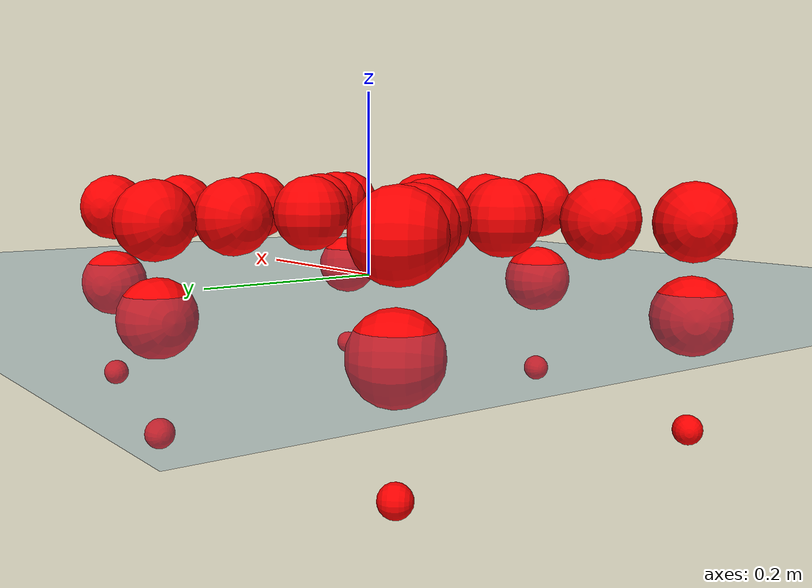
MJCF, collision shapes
<mujoco model="Golem">
  <compiler angle="radian" assetdir="assets" balanceinertia="true" inertiafromgeom="false"/>

  <option timestep="0.005" density="1.2" viscosity="2e-05"/>

  <size nkey="1"/>

  <visual>
    <quality shadowsize="8192"/>
    <map shadowclip="0.5"/>
  </visual>

  <default>
    <default class="/">
      <joint armature="0.01" damping="0.01" frictionloss="0.01"/>
      <geom contype="0" conaffinity="0" group="1" solref="-1000 -80"/>
      <site size="0.01 0.005 0.005" group="5"/>
      <general forcelimited="true" biastype="affine" gainprm="25" biasprm="0 -25 -0.5"/>
      <default class="visual">
        <geom type="mesh" group="2"/>
      </default>
      <default class="collision">
        <geom group="3"/>
      </default>
      <default class="foot">
        <geom size="0.01 0 0" condim="6" group="4" priority="1" solimp="0.015 1 0.01"/>
      </default>
      <default class="reward_collision_sphere">
        <geom group="5" rgba="1 0 0 1"/>
      </default>
    </default>
  </default>

  <asset>
    <texture type="skybox" colorspace="auto" name="//unnamed_texture_0" builtin="gradient" rgb1="0.95 0.95 0.95" rgb2="0.95 0.95 0.95" width="100" height="600"/>
    <texture type="2d" colorspace="auto" name="texplane" builtin="checker" rgb1="0.345 0.575 0.748" rgb2="0.345 0.575 0.748" markrgb="1 1 1" width="512" height="512"/>
    <material name="MatPlane" class="/" texture="texplane" texuniform="true" texrepeat="2 2" specular="0.9"/>
    <mesh name="body" class="/" file="body.stl" scale="0.001 0.001 0.001"/>
    <mesh name="coxa" class="/" file="coxa.stl" scale="0.001 0.001 0.001"/>
    <mesh name="femur" class="/" file="femur.stl" scale="0.001 0.001 0.001"/>
    <mesh name="tibia" class="/" file="tibia.stl" scale="0.001 0.001 0.001"/>
    <mesh name="tarsus" class="/" file="tarsus.stl" scale="0.001 0.001 0.001"/>
  </asset>

  <worldbody>
    <geom name="floor" class="/" size="100 100 0.125" type="plane" group="0" material="MatPlane"/>
    <light name="toplight_shadow" class="/" pos="0 0 5" dir="0.0990148 0.0990148 -0.990148" type="directional" ambient="0.04 0.04 0.04" diffuse="0.55 0.55 0.55" specular="0.12 0.12 0.12"/>
    <light name="toplight_fill" class="/" pos="0 0 5" dir="0.0990148 0.0990148 -0.990148" type="directional" castshadow="false" ambient="0.04 0.04 0.04" diffuse="0.3 0.3 0.3" specular="0.08 0.08 0.08"/>
    <body name="trunk" pos="-9.00668e-05 0.000313183 -9.32207e-05" quat="1 0.000382636 0.000289578 2.47929e-05">
      <inertial pos="0.000412547 0.000125426 -0.00500748" quat="0.999999 0.00101858 -0.000147657 0.000250622" mass="3.55195" diaginertia="0.0127291 0.00358329 0.0167456"/>
      <joint name="//unnamed_joint_0" type="free"/>
      <geom name="//unnamed_geom_1" class="/" pos="0 0 0.0709812" quat="1 0 0 0" type="mesh" rgba="0.9 0.9 0.9 1" mesh="body"/>
      <site name="imu" class="/" pos="0.143014 0.000379288 0.112194" size="0.00992093"/>
      <camera name="track" class="/" pos="0 -1.63283 0" quat="0.707107 0.707107 0 0" mode="trackcom"/>
      <camera name="ego_camera" class="/" pos="0.136602 0 0.110908" quat="-0.5 -0.5 0.5 0.5"/>
      <body name="coxa_RR" pos="-0.186257 -0.0692938 0.0704681" quat="0.382457 -0.000472672 3.80735e-05 -0.923973">
        <inertial pos="-1.10281e-05 0.000253536 -0.000299722" quat="0.999999 -0.000840678 0.000679712 -0.000577752" mass="0.193471" diaginertia="0.0127105 0.00361669 0.0161301"/>
        <joint name="coxa_joint_RR" class="/" pos="0 0 0" axis="0.00216277 -0.0025577 -0.999994" range="-3.13749 3.15828" armature="0.00980324" damping="0.0111048" frictionloss="0.00965281"/>
        <geom name="//unnamed_geom_2" class="/" type="mesh" rgba="0.2 0.2 0.2 1" mesh="coxa"/>
        <geom name="//unnamed_geom_3" class="reward_collision_sphere" size="0.0396837" pos="-0.0315235 0 0"/>
        <body name="femur_RR" pos="0.0633573 0.00288366 -0.00109506" quat="0.500035 -0.499921 0.500013 0.500031">
          <inertial pos="-0.0022128 -0.000190024 -0.00247779" quat="0.999933 0.00427688 0.00802722 0.00717389" mass="0.19256" diaginertia="0.0126769 0.00357262 0.0164394"/>
          <joint name="femur_joint_RR" class="/" pos="0 0 0" axis="-0.00552359 0.000519438 -0.999985" stiffness="0.00401744" range="-3.12316 3.13359" armature="0.00968802" damping="0" frictionloss="0.00992219"/>
          <geom name="//unnamed_geom_4" class="/" type="mesh" rgba="0.9 0.9 0.9 1" mesh="femur"/>
          <geom name="//unnamed_geom_5" class="reward_collision_sphere" size="0.0396837"/>
          <body name="tibia_RR" pos="0.00152652 -0.0881636 -0.00162409" quat="0.000251524 1 9.82513e-05 0.000301479">
            <inertial pos="-0.000241458 3.29807e-06 -0.00149165" quat="0.999998 0.000162435 0.0010802 -0.00135413" mass="0.198896" diaginertia="0.013241 0.00376927 0.0173439"/>
            <joint name="tibia_joint_RR" class="/" pos="0 0 0" axis="0.00338057 0.00606406 0.999976" range="-3.13406 3.1409" armature="0.0103339" damping="0.00147325" frictionloss="0.00948468"/>
            <geom name="//unnamed_geom_6" class="/" type="mesh" rgba="0.2 0.2 0.2 1" mesh="tibia"/>
            <geom name="//unnamed_geom_7" class="reward_collision_sphere" size="0.0396837"/>
            <body name="tarsus_RR" pos="0.0916134 -0.000631648 -0.000561602" quat="1 1.80459e-05 6.5827e-05 -0.000101311">
              <inertial pos="0.0652073 0.000601018 -0.000300753" quat="0.509834 0.496748 0.498071 0.495214" mass="0.201257" diaginertia="0.0126541 0.00362074 0.0171139"/>
              <joint name="tarsus_joint_RR" class="/" pos="0 0 0" axis="-0.0064695 -0.00211643 0.999977" range="-3.14506 3.13802" armature="0.0104079" damping="0.0412964" frictionloss="0.00952339"/>
              <geom name="//unnamed_geom_8" class="/" type="mesh" rgba="0.9 0.9 0.9 1" mesh="tarsus"/>
              <geom name="foot_1" class="foot" size="0.00971671" pos="0.117688 0 0" quat="0 -0.707107 0 0.707107"/>
              <geom name="//unnamed_geom_10" class="reward_collision_sphere" size="0.0396837"/>
              <geom name="//unnamed_geom_11" class="reward_collision_sphere" size="0.0148814" pos="0.112959 0 0"/>
              <site name="foot_1" class="foot" pos="0.117688 0 0" quat="0 -0.707107 0 0.707107" size="0.00992093"/>
            </body>
          </body>
        </body>
      </body>
      <body name="coxa_RM" pos="-7.81658e-05 -0.107537 0.0719717" quat="0.707498 -0.000764067 -0.000626621 -0.706715">
        <inertial pos="-0.000970193 -0.000245031 -0.00166202" quat="0.999994 -0.00051105 -0.00353095 2.60778e-05" mass="0.195765" diaginertia="0.0124975 0.00361777 0.0168857"/>
        <joint name="coxa_joint_RM" class="/" pos="0 0 0" axis="0.00175367 -0.000375754 -0.999998" range="-3.13464 3.1281" armature="0.0100453" damping="0.00983098" frictionloss="0.0103971"/>
        <geom name="//unnamed_geom_12" class="/" type="mesh" rgba="0.2 0.2 0.2 1" mesh="coxa"/>
        <geom name="//unnamed_geom_13" class="reward_collision_sphere" size="0.0396837" pos="-0.0315235 0 0"/>
        <body name="femur_RM" pos="0.0627977 -0.000318241 -0.00139114" quat="0.500002 -0.500008 0.500082 0.499909">
          <inertial pos="0.00200226 -0.00033972 -6.94302e-05" quat="0.999938 -0.00818311 0.00705729 0.0025097" mass="0.196613" diaginertia="0.0127026 0.00357705 0.0167496"/>
          <joint name="femur_joint_RM" class="/" pos="0 0 0" axis="0.00369566 0.00425808 -0.999984" range="-3.14237 3.13559" armature="0.0094109" damping="0.00647496" frictionloss="0.00965073"/>
          <geom name="//unnamed_geom_14" class="/" type="mesh" rgba="0.9 0.9 0.9 1" mesh="femur"/>
          <geom name="//unnamed_geom_15" class="reward_collision_sphere" size="0.0396837"/>
          <body name="tibia_RM" pos="0.000185876 -0.0880514 -0.000811591" quat="-5.61137e-05 1 -3.37939e-05 -0.000130101">
            <inertial pos="-0.00214982 -0.00115626 0.000288278" quat="1 0.000877228 -3.48116e-05 -1.70492e-05" mass="0.192809" diaginertia="0.0128684 0.00357466 0.0161956"/>
            <joint name="tibia_joint_RM" class="/" pos="0 0 0" axis="0.000377247 -0.00209222 0.999998" range="-3.13703 3.15912" armature="0.00998927" damping="0.0129805" frictionloss="0.0104338"/>
            <geom name="//unnamed_geom_16" class="/" type="mesh" rgba="0.2 0.2 0.2 1" mesh="tibia"/>
            <geom name="//unnamed_geom_17" class="reward_collision_sphere" size="0.0396837"/>
            <body name="tarsus_RM" pos="0.0917205 -0.00130006 0.00035344" quat="1 -0.000108946 -6.18162e-05 9.41374e-05">
              <inertial pos="0.0632201 -4.6762e-06 -0.000220105" quat="0.498673 0.500221 0.500568 0.500535" mass="0.194252" diaginertia="0.0123966 0.00358882 0.0167282"/>
              <joint name="tarsus_joint_RM" class="/" pos="0 0 0" axis="0.000469515 -0.00456189 0.999989" range="-3.12974 3.13839" armature="0.0098077" damping="0.00635474" frictionloss="0.010155"/>
              <geom name="//unnamed_geom_18" class="/" type="mesh" rgba="0.9 0.9 0.9 1" mesh="tarsus"/>
              <geom name="foot_2" class="foot" size="0.00928961" pos="0.117688 0 0" quat="0 -0.707107 0 0.707107"/>
              <geom name="//unnamed_geom_20" class="reward_collision_sphere" size="0.0396837"/>
              <geom name="//unnamed_geom_21" class="reward_collision_sphere" size="0.0148814" pos="0.112959 0 0"/>
              <site name="foot_2" class="foot" pos="0.117688 0 0" quat="0 -0.707107 0 0.707107" size="0.00992093"/>
            </body>
          </body>
        </body>
      </body>
      <body name="coxa_RF" pos="0.187409 -0.066333 0.0699328" quat="0.923816 0.000217981 0.000131622 -0.382837">
        <inertial pos="-0.0022555 -0.000263827 0.00075201" quat="0.999977 -0.0025804 0.00377573 -0.00499907" mass="0.198829" diaginertia="0.0126086 0.00349193 0.0165231"/>
        <joint name="coxa_joint_RF" class="/" pos="0 0 0" axis="0.00251877 0.00128128 -0.999996" range="-3.11946 3.14095" armature="0.0102467" damping="0.00959367" frictionloss="0.0104133"/>
        <geom name="//unnamed_geom_22" class="/" type="mesh" rgba="0.2 0.2 0.2 1" mesh="coxa"/>
        <geom name="//unnamed_geom_23" class="reward_collision_sphere" size="0.0396837" pos="-0.0315235 0 0"/>
        <body name="femur_RF" pos="0.0626257 -0.000833412 0.000594862" quat="0.499866 -0.499684 0.500521 0.499928">
          <inertial pos="-0.000479369 0.00203213 -0.000471009" quat="0.999997 -0.00149509 0.00135648 -0.00169264" mass="0.195311" diaginertia="0.0128463 0.00357839 0.0167214"/>
          <joint name="femur_joint_RF" class="/" pos="0 0 0" axis="6.86046e-05 0.000102921 -1" range="-3.13771 3.13377" armature="0.0100206" damping="0.00793951" frictionloss="0.0102479"/>
          <geom name="//unnamed_geom_24" class="/" type="mesh" rgba="0.9 0.9 0.9 1" mesh="femur"/>
          <geom name="//unnamed_geom_25" class="reward_collision_sphere" size="0.0396837"/>
          <body name="tibia_RF" pos="0.001488 -0.0868391 0.000614686" quat="8.14239e-05 1 -0.00041771 -0.000120447">
            <inertial pos="-0.00150651 -0.000987466 0.00183627" quat="0.999998 -0.00208177 0.000110763 -0.000395778" mass="0.196469" diaginertia="0.0128204 0.00364707 0.0167093"/>
            <joint name="tibia_joint_RF" class="/" pos="0 0 0" axis="-0.000145089 -0.000994888 0.999999" range="-3.13392 3.12467" armature="0.00976819" damping="0.000209523" frictionloss="0.0100709"/>
            <geom name="//unnamed_geom_26" class="/" type="mesh" rgba="0.2 0.2 0.2 1" mesh="tibia"/>
            <geom name="//unnamed_geom_27" class="reward_collision_sphere" size="0.0396837"/>
            <body name="tarsus_RF" pos="0.0930173 0.00168117 -0.00126447" quat="1 -0.000159329 -5.47001e-05 6.55655e-05">
              <inertial pos="0.0611382 0.00020207 -0.000340146" quat="0.49878 0.499425 0.501524 0.500266" mass="0.19225" diaginertia="0.012625 0.00372234 0.0164932"/>
              <joint name="tarsus_joint_RF" class="/" pos="0 0 0" axis="-0.00377124 0.00787995 0.999962" range="-3.12754 3.14104" armature="0.0103728" damping="0" frictionloss="0.0111163"/>
              <geom name="//unnamed_geom_28" class="/" type="mesh" rgba="0.9 0.9 0.9 1" mesh="tarsus"/>
              <geom name="foot_3" class="foot" size="0.010668" pos="0.117688 0 0" quat="0 -0.707107 0 0.707107"/>
              <geom name="//unnamed_geom_30" class="reward_collision_sphere" size="0.0396837"/>
              <geom name="//unnamed_geom_31" class="reward_collision_sphere" size="0.0148814" pos="0.112959 0 0"/>
              <site name="foot_3" class="foot" pos="0.117688 0 0" quat="0 -0.707107 0 0.707107" size="0.00992093"/>
            </body>
          </body>
        </body>
      </body>
      <body name="coxa_LR" pos="-0.187028 0.0698232 0.071637" quat="0.383277 0.000275473 -0.000334126 0.923633">
        <inertial pos="-7.50732e-05 -0.000867842 -0.00183886" quat="0.99999 0.00403445 0.000540723 -0.00180322" mass="0.186265" diaginertia="0.0124081 0.00350958 0.0162116"/>
        <joint name="coxa_joint_LR" class="/" pos="0 0 0" axis="0.000230005 -0.000170829 -1" range="-3.12184 3.18576" armature="0.0103567" damping="0.00987233" frictionloss="0.00876121"/>
        <geom name="//unnamed_geom_32" class="/" type="mesh" rgba="0.2 0.2 0.2 1" mesh="coxa"/>
        <geom name="//unnamed_geom_33" class="reward_collision_sphere" size="0.0396837" pos="-0.0315235 0 0"/>
        <body name="femur_LR" pos="0.0635614 -0.00222096 -0.001655" quat="0.499959 -0.500055 0.499926 0.50006">
          <inertial pos="-0.00022737 -0.000851363 -0.00054872" quat="0.999998 0.00160385 0.000744758 -0.00123017" mass="0.196551" diaginertia="0.0130531 0.00376038 0.0170001"/>
          <joint name="femur_joint_LR" class="/" pos="0 0 0" axis="0.00271739 -0.00505092 0.999984" range="-3.13058 3.12172" armature="0.0100326" damping="0.0106612" frictionloss="0.010362"/>
          <geom name="//unnamed_geom_34" class="/" type="mesh" rgba="0.9 0.9 0.9 1" mesh="femur"/>
          <geom name="//unnamed_geom_35" class="reward_collision_sphere" size="0.0396837"/>
          <body name="tibia_LR" pos="-0.000923688 -0.0893416 -0.000921441" quat="-0.000140872 1 -0.000438885 -7.3772e-05">
            <inertial pos="-0.000190461 0.00232018 -8.79137e-05" quat="0.999986 0.000898389 0.00395601 0.0033221" mass="0.192728" diaginertia="0.0131128 0.00365793 0.0161863"/>
            <joint name="tibia_joint_LR" class="/" pos="0 0 0" axis="0.00278674 0.00162108 -0.999995" range="-3.13423 3.13539" armature="0.00943259" damping="0.00142516" frictionloss="0.00969166"/>
            <geom name="//unnamed_geom_36" class="/" type="mesh" rgba="0.2 0.2 0.2 1" mesh="tibia"/>
            <geom name="//unnamed_geom_37" class="reward_collision_sphere" size="0.0396837"/>
            <body name="tarsus_LR" pos="0.0942896 0.000989851 0.00160101" quat="1 7.16417e-05 0.000401846 -0.000320233">
              <inertial pos="0.0646091 0.000580555 0.00114562" quat="0.496476 0.50047 0.502504 0.500531" mass="0.187983" diaginertia="0.0123732 0.00350688 0.0162554"/>
              <joint name="tarsus_joint_LR" class="/" pos="0 0 0" axis="-0.00127186 0.00258859 -0.999996" range="-3.14013 3.14357" armature="0.00865238" damping="0.0281221" frictionloss="0.0104293"/>
              <geom name="//unnamed_geom_38" class="/" type="mesh" rgba="0.9 0.9 0.9 1" mesh="tarsus"/>
              <geom name="foot_4" class="foot" size="0.00958854" pos="0.117688 0 0" quat="0.707107 0 -0.707107 0"/>
              <geom name="//unnamed_geom_40" class="reward_collision_sphere" size="0.0396837"/>
              <geom name="//unnamed_geom_41" class="reward_collision_sphere" size="0.0148814" pos="0.112959 0 0"/>
              <site name="foot_4" class="foot" pos="0.117688 0 0" quat="0.707107 0 -0.707107 0" size="0.00992093"/>
            </body>
          </body>
        </body>
      </body>
      <body name="coxa_LM" pos="-0.000968728 0.107127 0.0714335" quat="0.707731 -0.000604175 -1.59997e-05 0.706482">
        <inertial pos="0.00179611 -0.00180173 0.0013282" quat="0.99998 0.00477941 -0.0037015 0.00198083" mass="0.196235" diaginertia="0.0125353 0.00361135 0.0167024"/>
        <joint name="coxa_joint_LM" class="/" pos="0 0 0" axis="0.000845631 0.00314543 -0.999995" range="-3.1315 3.13543" armature="0.0110517" damping="0" frictionloss="0.00944167"/>
        <geom name="//unnamed_geom_42" class="/" type="mesh" rgba="0.2 0.2 0.2 1" mesh="coxa"/>
        <geom name="//unnamed_geom_43" class="reward_collision_sphere" size="0.0396837" pos="-0.0315235 0 0"/>
        <body name="femur_LM" pos="0.0604386 0.00154677 -0.000568647" quat="0.500005 -0.499886 0.499981 0.500128">
          <inertial pos="-0.00132349 8.00182e-05 -0.00183233" quat="0.999999 -0.00138641 -0.000881364 -0.000116818" mass="0.200502" diaginertia="0.0129338 0.00366773 0.0168851"/>
          <joint name="femur_joint_LM" class="/" pos="0 0 0" axis="0.00471755 -0.00390093 0.999981" range="-3.14094 3.12358" armature="0.00996011" damping="0.00608685" frictionloss="0.00994858"/>
          <geom name="//unnamed_geom_44" class="/" type="mesh" rgba="0.9 0.9 0.9 1" mesh="femur"/>
          <geom name="//unnamed_geom_45" class="reward_collision_sphere" size="0.0396837"/>
          <body name="tibia_LM" pos="0.000412213 -0.0847897 0.00150843" quat="0.000114081 1 -0.000140484 8.25251e-05">
            <inertial pos="0.00216383 -0.000798785 0.00240099" quat="0.999999 0.000349488 -0.00106604 6.7461e-05" mass="0.19487" diaginertia="0.0129043 0.0035358 0.0168449"/>
            <joint name="tibia_joint_LM" class="/" pos="0 0 0" axis="-0.00292382 0.00223215 -0.999993" range="-3.15713 3.13675" armature="0.0100649" damping="0.000879806" frictionloss="0.00950812"/>
            <geom name="//unnamed_geom_46" class="/" type="mesh" rgba="0.2 0.2 0.2 1" mesh="tibia"/>
            <geom name="//unnamed_geom_47" class="reward_collision_sphere" size="0.0396837"/>
            <body name="tarsus_LM" pos="0.0942641 -0.00119677 0.000383636" quat="1 -3.46852e-05 3.86179e-05 -5.54971e-06">
              <inertial pos="0.0628222 -0.000217309 -0.00012984" quat="0.498248 0.500794 0.499264 0.501688" mass="0.200744" diaginertia="0.012838 0.00384723 0.017473"/>
              <joint name="tarsus_joint_LM" class="/" pos="0 0 0" axis="-0.00358858 -0.00119874 -0.999993" stiffness="0.000808343" range="-3.1891 3.14629" armature="0.0100864" damping="0.00296764" frictionloss="0.0100229"/>
              <geom name="//unnamed_geom_48" class="/" type="mesh" rgba="0.9 0.9 0.9 1" mesh="tarsus"/>
              <geom name="foot_5" class="foot" size="0.0100627" pos="0.117688 0 0" quat="0.707107 0 -0.707107 0"/>
              <geom name="//unnamed_geom_50" class="reward_collision_sphere" size="0.0396837"/>
              <geom name="//unnamed_geom_51" class="reward_collision_sphere" size="0.0148814" pos="0.112959 0 0"/>
              <site name="foot_5" class="foot" pos="0.117688 0 0" quat="0.707107 0 -0.707107 0" size="0.00992093"/>
            </body>
          </body>
        </body>
      </body>
      <body name="coxa_LF" pos="0.187661 0.0697135 0.0718992" quat="0.924148 -6.27008e-05 0.000723937 0.382033">
        <inertial pos="-9.75352e-05 0.00242797 0.000502224" quat="0.999999 0.00103464 -0.000226637 -0.000277469" mass="0.198362" diaginertia="0.0132158 0.00377555 0.0172016"/>
        <joint name="coxa_joint_LF" class="/" pos="0 0 0" axis="0.00427235 0.00239758 -0.999988" range="-3.13389 3.14891" armature="0.0111358" damping="0" frictionloss="0.00948965"/>
        <geom name="//unnamed_geom_52" class="/" type="mesh" rgba="0.2 0.2 0.2 1" mesh="coxa"/>
        <geom name="//unnamed_geom_53" class="reward_collision_sphere" size="0.0396837" pos="-0.0315235 0 0"/>
        <body name="femur_LF" pos="0.0634038 -0.00188211 -0.00300983" quat="0.500495 -0.499606 0.499776 0.500122">
          <inertial pos="0.000258649 0.000344864 0.00245037" quat="0.999967 0.00746873 -0.00215451 -0.00250452" mass="0.196405" diaginertia="0.0128119 0.00373566 0.0166525"/>
          <joint name="femur_joint_LF" class="/" pos="0 0 0" axis="0.000538522 0.00264349 0.999996" range="-3.13287 3.0946" armature="0.00977144" damping="0" frictionloss="0.0096315"/>
          <geom name="//unnamed_geom_54" class="/" type="mesh" rgba="0.9 0.9 0.9 1" mesh="femur"/>
          <geom name="//unnamed_geom_55" class="reward_collision_sphere" size="0.0396837"/>
          <body name="tibia_LF" pos="0.00044046 -0.0883702 0.00113106" quat="0.000549778 1 -0.000224931 0.000512332">
            <inertial pos="-0.000695587 -0.00194665 0.000296393" quat="1 0.00079815 0.000341395 0.000238423" mass="0.195346" diaginertia="0.0128805 0.00362312 0.0169768"/>
            <joint name="tibia_joint_LF" class="/" pos="0 0 0" axis="0.00792557 -0.00428881 -0.999959" range="-3.16721 3.14831" armature="0.00998007" damping="0" frictionloss="0.0108721"/>
            <geom name="//unnamed_geom_56" class="/" type="mesh" rgba="0.2 0.2 0.2 1" mesh="tibia"/>
            <geom name="//unnamed_geom_57" class="reward_collision_sphere" size="0.0396837"/>
            <body name="tarsus_LF" pos="0.0933144 0.000352808 -6.93421e-05" quat="0.999999 -0.000362058 -0.000374229 0.0011358">
              <inertial pos="0.0646396 5.06352e-05 0.000155701" quat="0.501753 0.500831 0.49826 0.499148" mass="0.195898" diaginertia="0.0123919 0.00352838 0.0165066"/>
              <joint name="tarsus_joint_LF" class="/" pos="0 0 0" axis="-0.0132094 -0.0055565 -0.999897" stiffness="0.0277731" range="-3.15803 3.11083" armature="0.00940368" damping="0.0278836" frictionloss="0.00957455"/>
              <geom name="//unnamed_geom_58" class="/" type="mesh" rgba="0.9 0.9 0.9 1" mesh="tarsus"/>
              <geom name="foot_6" class="foot" size="0.00929071" pos="0.117688 0 0" quat="0.707107 0 -0.707107 0"/>
              <geom name="//unnamed_geom_60" class="reward_collision_sphere" size="0.0396837"/>
              <geom name="//unnamed_geom_61" class="reward_collision_sphere" size="0.0148814" pos="0.112959 0 0"/>
              <site name="foot_6" class="foot" pos="0.117688 0 0" quat="0.707107 0 -0.707107 0" size="0.00992093"/>
            </body>
          </body>
        </body>
      </body>
    </body>
  </worldbody>

  <contact>
    <pair class="/" geom1="floor" geom2="foot_1" name="//unnamed_contact_0"/>
    <pair class="/" geom1="floor" geom2="foot_2" name="//unnamed_contact_1"/>
    <pair class="/" geom1="floor" geom2="foot_3" name="//unnamed_contact_2"/>
    <pair class="/" geom1="floor" geom2="foot_4" name="//unnamed_contact_3"/>
    <pair class="/" geom1="floor" geom2="foot_5" name="//unnamed_contact_4"/>
    <pair class="/" geom1="floor" geom2="foot_6" name="//unnamed_contact_5"/>
  </contact>

  <actuator>
    <general name="coxa_joint_RR" class="/" joint="coxa_joint_RR" forcerange="-6.66332 6.66332" gainprm="23.9993" biasprm="0 -23.9993 -0.514998"/>
    <general name="femur_joint_RR" class="/" joint="femur_joint_RR" forcerange="-7.01421 7.01421" gainprm="23.9993" biasprm="0 -23.9993 -0.514998"/>
    <general name="tibia_joint_RR" class="/" joint="tibia_joint_RR" forcerange="-6.59655 6.59655" gainprm="23.9993" biasprm="0 -23.9993 -0.514998"/>
    <general name="tarsus_joint_RR" class="/" joint="tarsus_joint_RR" forcerange="-7.10395 7.10395" gainprm="23.9993" biasprm="0 -23.9993 -0.514998"/>
    <general name="coxa_joint_RM" class="/" joint="coxa_joint_RM" forcerange="-7.22893 7.22893" gainprm="23.9993" biasprm="0 -23.9993 -0.514998"/>
    <general name="femur_joint_RM" class="/" joint="femur_joint_RM" forcerange="-7.24395 7.24395" gainprm="23.9993" biasprm="0 -23.9993 -0.514998"/>
    <general name="tibia_joint_RM" class="/" joint="tibia_joint_RM" forcerange="-6.75419 6.75419" gainprm="23.9993" biasprm="0 -23.9993 -0.514998"/>
    <general name="tarsus_joint_RM" class="/" joint="tarsus_joint_RM" forcerange="-7.87054 7.87054" gainprm="23.9993" biasprm="0 -23.9993 -0.514998"/>
    <general name="coxa_joint_RF" class="/" joint="coxa_joint_RF" forcerange="-7.14376 7.14376" gainprm="23.9993" biasprm="0 -23.9993 -0.514998"/>
    <general name="femur_joint_RF" class="/" joint="femur_joint_RF" forcerange="-7.26304 7.26304" gainprm="23.9993" biasprm="0 -23.9993 -0.514998"/>
    <general name="tibia_joint_RF" class="/" joint="tibia_joint_RF" forcerange="-7.80231 7.80231" gainprm="23.9993" biasprm="0 -23.9993 -0.514998"/>
    <general name="tarsus_joint_RF" class="/" joint="tarsus_joint_RF" forcerange="-6.99422 6.99422" gainprm="23.9993" biasprm="0 -23.9993 -0.514998"/>
    <general name="coxa_joint_LR" class="/" joint="coxa_joint_LR" forcerange="-7.21617 7.21617" gainprm="23.9993" biasprm="0 -23.9993 -0.514998"/>
    <general name="femur_joint_LR" class="/" joint="femur_joint_LR" forcerange="-6.90876 6.90876" gainprm="23.9993" biasprm="0 -23.9993 -0.514998"/>
    <general name="tibia_joint_LR" class="/" joint="tibia_joint_LR" forcerange="-7.4983 7.4983" gainprm="23.9993" biasprm="0 -23.9993 -0.514998"/>
    <general name="tarsus_joint_LR" class="/" joint="tarsus_joint_LR" forcerange="-7.18842 7.18842" gainprm="23.9993" biasprm="0 -23.9993 -0.514998"/>
    <general name="coxa_joint_LM" class="/" joint="coxa_joint_LM" forcerange="-7.49619 7.49619" gainprm="23.9993" biasprm="0 -23.9993 -0.514998"/>
    <general name="femur_joint_LM" class="/" joint="femur_joint_LM" forcerange="-7.46371 7.46371" gainprm="23.9993" biasprm="0 -23.9993 -0.514998"/>
    <general name="tibia_joint_LM" class="/" joint="tibia_joint_LM" forcerange="-7.07453 7.07453" gainprm="23.9993" biasprm="0 -23.9993 -0.514998"/>
    <general name="tarsus_joint_LM" class="/" joint="tarsus_joint_LM" forcerange="-7.32869 7.32869" gainprm="23.9993" biasprm="0 -23.9993 -0.514998"/>
    <general name="coxa_joint_LF" class="/" joint="coxa_joint_LF" forcerange="-7.52337 7.52337" gainprm="23.9993" biasprm="0 -23.9993 -0.514998"/>
    <general name="femur_joint_LF" class="/" joint="femur_joint_LF" forcerange="-7.0618 7.0618" gainprm="23.9993" biasprm="0 -23.9993 -0.514998"/>
    <general name="tibia_joint_LF" class="/" joint="tibia_joint_LF" forcerange="-7.31408 7.31408" gainprm="23.9993" biasprm="0 -23.9993 -0.514998"/>
    <general name="tarsus_joint_LF" class="/" joint="tarsus_joint_LF" forcerange="-7.50547 7.50547" gainprm="23.9993" biasprm="0 -23.9993 -0.514998"/>
  </actuator>

  <sensor>
    <gyro site="imu" name="imu_angular_velocity"/>
    <velocimeter site="imu" name="imu_linear_velocity"/>
    <framelinvel objtype="site" objname="foot_1" name="foot_1_global_linear_velocity"/>
    <framelinvel objtype="site" objname="foot_2" name="foot_2_global_linear_velocity"/>
    <framelinvel objtype="site" objname="foot_3" name="foot_3_global_linear_velocity"/>
    <framelinvel objtype="site" objname="foot_4" name="foot_4_global_linear_velocity"/>
    <framelinvel objtype="site" objname="foot_5" name="foot_5_global_linear_velocity"/>
    <framelinvel objtype="site" objname="foot_6" name="foot_6_global_linear_velocity"/>
  </sensor>

  <keyframe>
    <key name="home" qpos="0 0 0.1457 1 0 0 0 0 0 0 0 0 0 0 0 0 0 0 0 0 0 0 0 0 0 0 0 0 0 0 0"/>
  </keyframe>
</mujoco>
